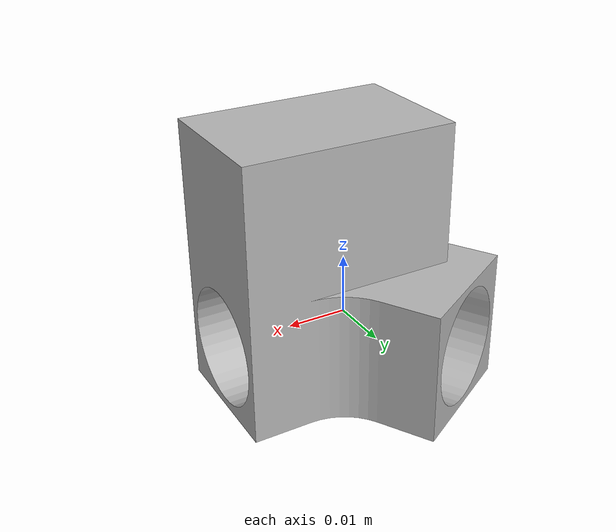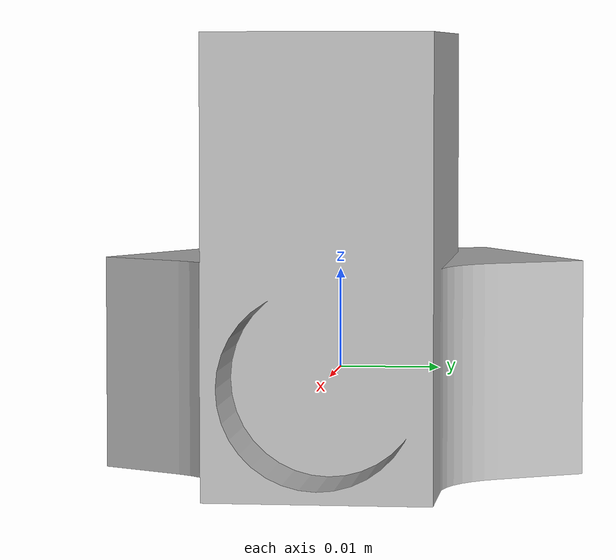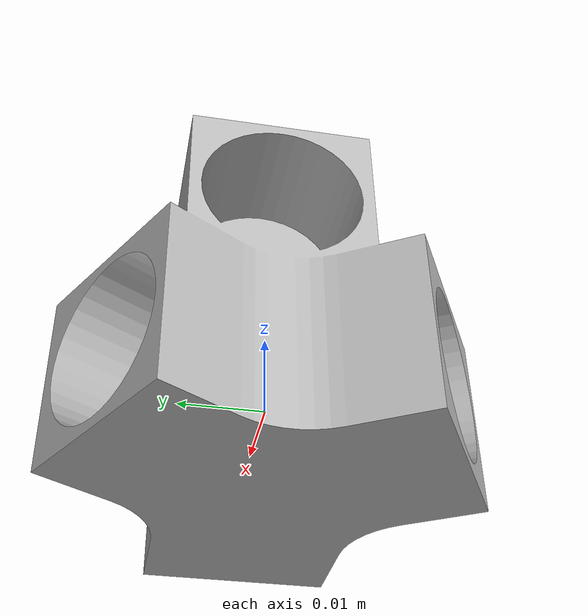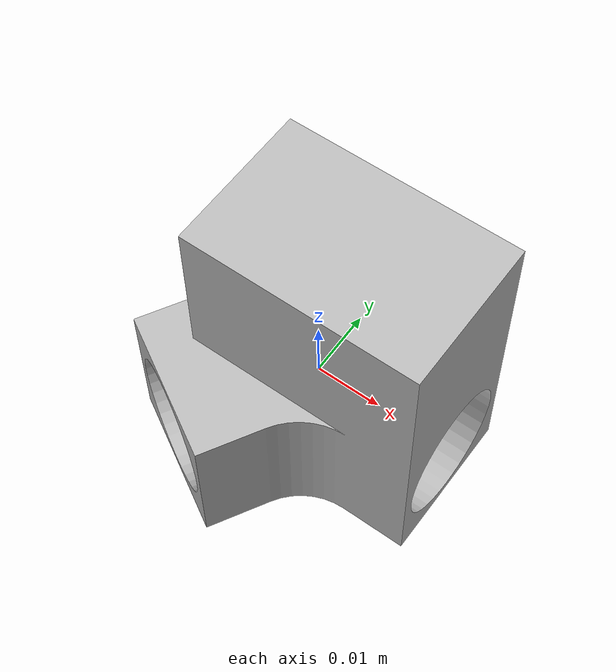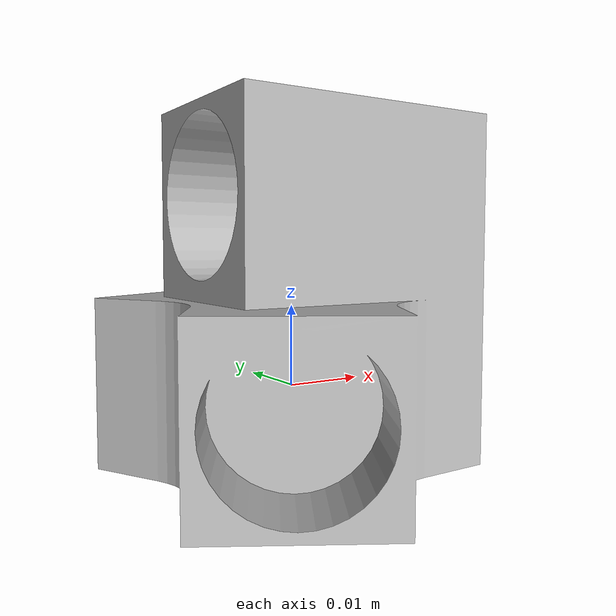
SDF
<sdf version='1.4'>
  <model name='rrbot'>
    <link name='hipJoint'>
      <pose>0 0 0 0 -0 0</pose>
      <inertial>
        <pose>0 0 0 0 -0 0</pose>
        <mass>0.0288303</mass>
        <inertia>
          <ixx>0.00757</ixx>
          <ixy>0</ixy>
          <ixz>0</ixz>
          <iyy>0.212</iyy>
          <iyz>0</iyz>
          <izz>0.21199</izz>
        </inertia>
      </inertial>
      <collision name='hipJoint_collision'>
        <pose>0 0 0 0 -0 0</pose>
        <geometry>
          <mesh>
            <scale>1 1 1</scale>
            <uri>model://rrbot_description/meshes/singleleghipjoint.dae</uri>
          </mesh>
        </geometry>
      </collision>
      <visual name='hipJoint_visual'>
        <pose>0 0 0 0 -0 0</pose>
        <geometry>
          <mesh>
            <scale>1 1 1</scale>
            <uri>model://rrbot_description/meshes/singleleghipjoint.dae</uri>
          </mesh>
        </geometry>
      </visual>
      <velocity_decay>
        <linear>0</linear>
        <angular>0</angular>
      </velocity_decay>
    </link>
  </model>
</sdf>
